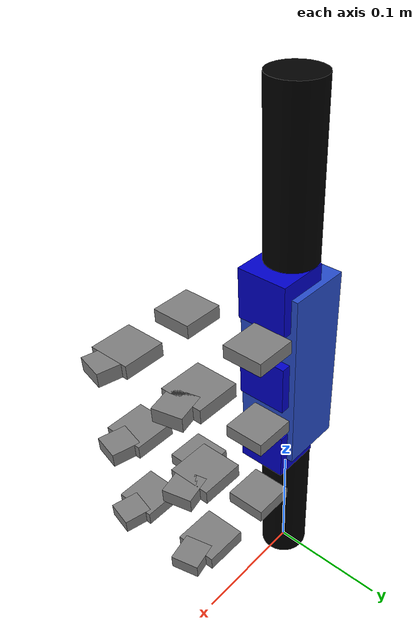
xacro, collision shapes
<?xml version="1.0" encoding="UTF-8"?>
<robot name="ezgripper_triple_mount_instantiation" xmlns:xacro="http://ros.org/wiki/xacro">
    <!-- Arm name parameter for consistent naming across all components -->
    <xacro:arg name="prefix" default="left_arm"/>
    <!-- Define the prefix property to ensure it's accessible in all included files -->
    <xacro:property name="prefix" value="$(arg prefix)"/>
    <!-- Triple gripper uses fixed unit numbers: 1 for left, 2 for center, 3 for right -->
    <!-- Triple gripper uses fixed unit numbers: 1 for left, 2 for center, 3 for right -->

    <!-- Include centralized material definitions -->
    <xacro:include filename="$(find ezgripper_description)/urdf/materials.urdf.xacro" />
    <!-- Define materials -->
    <xacro:define_ezgripper_materials />

    <xacro:property name="ezgripper_offset_x" value="0.00"/>
    <xacro:property name="ezgripper_offset_y" value="0.0"/>
    <xacro:property name="ezgripper_offset_z" value="0.21"/>

    <!-- Include the triple gripper with mount XACRO file -->
    <xacro:include filename="ezgripper_triple_with_mount.urdf.xacro" />

    <!-- Instantiate the gripper and mount assembly with specified parameters -->
    <!-- The triple gripper uses the arm name as prefix and fixed unit numbers (1,2,3) for each gripper position -->
    <xacro:ezgripper_triple_with_mount
        prefix="$(arg prefix)"
        parent_link="base_link">
        <origin xyz="${ezgripper_offset_x} ${ezgripper_offset_y} ${ezgripper_offset_z}" rpy="0 0 0"/>
    </xacro:ezgripper_triple_with_mount>

    <link name="world"/>

    <joint name="fixed" type="fixed">
        <parent link="world"/>
        <child link="base_link"/>
    </joint>

    <link name="base_link">
        <visual>
            <geometry>
                <cylinder length="0.42" radius="0.02"/>
            </geometry>
            <origin rpy="0 0 0" xyz="0 0 0.21"/>
            <material name="ezgripper_black"/>
        </visual>
        <collision>
            <geometry>
                <cylinder length="0.42" radius="0.02"/>
            </geometry>
            <origin rpy="0 0 0" xyz="0 0 0.21"/>
        </collision>
    </link>

</robot>

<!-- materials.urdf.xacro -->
<robot xmlns:xacro="http://ros.org/wiki/xacro">
  <!-- EZGripper material color properties -->
  <xacro:property name="ezgripper_black_rgba" value="0.0 0.0 0.0 1.0" />
  <xacro:property name="ezgripper_blue_rgba" value="0.0 0.0 0.8 1.0" />
  <xacro:property name="ezgripper_grey_rgba" value="0.5 0.5 0.5 1.0" />
  <xacro:property name="ezgripper_white_rgba" value="1.0 1.0 1.0 1.0" />

  <!-- EZGripper material definitions macro -->
  <xacro:macro name="define_ezgripper_materials">
    <material name="ezgripper_black">
      <color rgba="${ezgripper_black_rgba}"/>
    </material>

    <material name="ezgripper_blue">
      <color rgba="${ezgripper_blue_rgba}"/>
    </material>

    <material name="ezgripper_grey">
      <color rgba="${ezgripper_grey_rgba}"/>
    </material>

    <material name="ezgripper_white">
      <color rgba="${ezgripper_white_rgba}"/>
    </material>
  </xacro:macro>

</robot>

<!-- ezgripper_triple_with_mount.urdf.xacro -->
<robot name="ezgripper_triple_with_mount" xmlns:xacro="http://ros.org/wiki/xacro">

  <xacro:macro name="ezgripper_triple_with_mount" params="prefix parent_link *origin">
    <!-- Use the robot prefix for consistent naming across all components -->

    <!-- Define gripper spacing properties -->
    <xacro:property name="gripper_spacing" value="0.068"/>  <!-- Gripper separation in m (6.8cm) -->
    <xacro:property name="gripper_offset" value="0.01254"/>   <!-- Gripper offset in the positive X direction from the mount in m (1.254cm) -->

    <!-- Include the gripper and mount files -->
    <xacro:include filename="$(find ezgripper_description)/urdf/SAKE_triple_mount.urdf.xacro" />
    <xacro:include filename="$(find ezgripper_description)/urdf/ezgripper_single.urdf.xacro" />

    <!-- Instantiate the triple mount as a common component for all grippers -->
    <xacro:SAKE_triple_mount prefix="${prefix}" parent_link="${parent_link}">
      <xacro:insert_block name="origin"/>
    </xacro:SAKE_triple_mount>

    <!-- Instantiate the first ezgripper (left position) with unique prefix -->
    <!-- Each gripper in the triple assembly has a unique prefix to ensure proper naming -->
    <xacro:ezgripper_single prefix="${prefix}_1" parent_link="${prefix}_ezgripper_to_mount">
      <origin xyz="${gripper_offset} 0 ${gripper_spacing}" rpy="0 0 0"/>
    </xacro:ezgripper_single>

    <!-- Instantiate the second ezgripper (center position) with unique prefix -->
    <xacro:ezgripper_single prefix="${prefix}_2" parent_link="${prefix}_ezgripper_to_mount">
      <origin xyz="${gripper_offset} 0 0" rpy="0 0 0"/>
    </xacro:ezgripper_single>

    <!-- Instantiate the third ezgripper (right position) with unique prefix -->
    <xacro:ezgripper_single prefix="${prefix}_3" parent_link="${prefix}_ezgripper_to_mount">
      <origin xyz="${gripper_offset} 0 -${gripper_spacing}" rpy="0 0 0"/>
    </xacro:ezgripper_single>

  </xacro:macro>

</robot>

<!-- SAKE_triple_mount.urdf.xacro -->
<robot name="SAKE_triple_mount" xmlns:xacro="http://ros.org/wiki/xacro">

	<xacro:macro name="SAKE_triple_mount" params="prefix parent_link *origin">

		<!-- links -->

		<joint name="${prefix}_ezgripper_mount2base" type="fixed">
				<xacro:insert_block name="origin"/>
				<parent link="${parent_link}"/>
				<child link="${prefix}_ezgripper_to_mount"/>
				<axis xyz="0 0 0"/>
				<limit effort="0" lower="-1.57075" upper="0.25" velocity="3.67"/>
		</joint>

		<link name="${prefix}_ezgripper_to_mount">
			<visual>
				<origin rpy="0 0 0" xyz="0.0 0.0 0.0"/>
				<geometry>
					<mesh filename="package://ezgripper_description/meshes/visual/SAKE_Triple_Mount.stl"/>
				</geometry>
				<material name="blue"/>
				<!-- Using material defined in materials.urdf.xacro -->
			</visual>
			<collision>
				<origin rpy="0 0 0" xyz="0.0 0.0 0.0"/>
				<geometry>
					<box size="0.05 0.05 0.15"/>
				</geometry>
			</collision>
			<inertial>
				<mass value=".3"/>
				<inertia ixx="0.01" ixy="0.0" ixz="0.0" iyy="0.01" iyz="0.0" izz="0.01"/>
			</inertial>
		</link>

		<gazebo reference="${prefix}_ezgripper_to_mount">
			<material>Gazebo/Blue</material>
		</gazebo>

	</xacro:macro>

</robot>

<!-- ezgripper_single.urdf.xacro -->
<robot name="ezgripper_single" xmlns:xacro="http://ros.org/wiki/xacro">

    <!-- Material definitions are included in the parent file -->

	<xacro:macro name="ezgripper_single" params="prefix parent_link *origin">

		<!-- links -->

		<xacro:ezgripper_palm prefix="${prefix}" parent_link="${parent_link}">
			<xacro:insert_block name="origin"/>
		</xacro:ezgripper_palm>

	</xacro:macro>

	<xacro:macro name="ezgripper_palm" params="prefix parent_link *origin">

        <joint name="${prefix}_ezgripper_to_parent" type="fixed">
   	    <xacro:insert_block name="origin"/>
            <parent link="${parent_link}"/>
            <child link="${prefix}_ezgripper_palm_link"/>
            <axis xyz="0 0 0"/>
            <limit effort="0" lower="-1.57075" upper="0.25" velocity="3.67"/>
        </joint>

		<link name="${prefix}_ezgripper_palm_link">
			<visual>
				<origin xyz="0.0 0 0" rpy="0 0 0"/>
				<geometry>
					<mesh filename="package://ezgripper_description/meshes/visual/SAKE_Palm_IM.stl"/>
				</geometry>
				<material name="ezgripper_blue"/>
			</visual>
			<collision>
				<origin xyz="0.0 0 0" rpy="0 0 0"/>
				<geometry>
					<box size="0.04 0.04 0.04"/>
				</geometry>
			</collision>
			<inertial>
				<mass value=".3"/>
				<inertia ixx="0.01" ixy="0.0" ixz="0.0" iyy="0.01" iyz="0.0" izz="0.01"/>
			</inertial>
		</link>

		<gazebo reference="${prefix}_ezgripper_palm_link">
			<material>Gazebo/Blue</material>
		</gazebo>

		<xacro:ezgripper_finger_L1 prefix="${prefix}" postfix="1" reflect="1" />
		<xacro:ezgripper_finger_L1 prefix="${prefix}" postfix="2" reflect="1" />

		<xacro:ezgripper_finger_L2 prefix="${prefix}" postfix="1" reflect="1" />
		<xacro:ezgripper_finger_L2 prefix="${prefix}" postfix="2" reflect="1" />

		<xacro:ezgripper_finger_pad prefix="${prefix}" postfix="1" reflect="1" />
		<xacro:ezgripper_finger_pad prefix="${prefix}" postfix="2" reflect="1" />

		<xacro:ezgripper_knuckle_palm_L1 prefix="${prefix}" postfix="1" reflectY="1" reflectZ="1" reflectR="-1" mimic_test="false"/>
		<xacro:ezgripper_knuckle_palm_L1 prefix="${prefix}" postfix="2" reflectY="-1" reflectZ="1" reflectR="1" mimic_test="true"/>

		<xacro:ezgripper_knuckle_L1_L2 prefix="${prefix}" postfix="1" reflectY="1" reflectZ="1" reflectR="-1"/>
		<xacro:ezgripper_knuckle_L1_L2 prefix="${prefix}" postfix="2" reflectY="-1" reflectZ="1" reflectR="1"/>

		<xacro:ezgripper_joint_finger_pad prefix="${prefix}" postfix="1" reflectY="1" reflectZ="1" reflectR="1"/>
		<xacro:ezgripper_joint_finger_pad prefix="${prefix}" postfix="2" reflectY="-1" reflectZ="1" reflectR="-1"/>

		<!-- Transmission needs to be removed when mimicked -->
		<xacro:ezgripper_knuckle_palm_trans prefix="${prefix}" postfix="L1_1"/>

		<xacro:gazebo_knuckle_jsp prefix="${prefix}" />

	</xacro:macro>

	<xacro:macro name="ezgripper_finger_L1" params="prefix postfix reflect">

		<link name="${prefix}_ezgripper_finger_L1_${postfix}">
			<visual>
				<origin xyz="0 0 0" rpy="0 0 0"/>
				<geometry>
					<mesh filename="package://ezgripper_description/meshes/visual/SAKE_Finger_L1_IM.stl"/>
				</geometry>
				<material name="ezgripper_grey"/>
			</visual>
			<collision>
				<origin xyz="0 0 0" rpy="0 0 0"/>
				<geometry>
					<box size="0.03 0.01 0.03"/>
				</geometry>
			</collision>
			<inertial>
				<mass value=".025"/>
				<inertia ixx="0.01" ixy="0.0" ixz="0.0" iyy="0.01" iyz="0.0" izz="0.01"/>
			</inertial>
		</link>

		<gazebo reference="${prefix}_ezgripper_finger_L1_${postfix}">
			<material>Gazebo/Grey</material>
		</gazebo>

	</xacro:macro>

	<xacro:macro name="ezgripper_finger_L2" params="prefix postfix reflect">

		<link name="${prefix}_ezgripper_finger_L2_${postfix}">
			<visual>
				<origin xyz="0 0 0" rpy="0 0 0"/>
				<geometry>
					<mesh filename="package://ezgripper_description/meshes/visual/SAKE_Finger_L2_IM.stl"/>
				</geometry>
				<material name="ezgripper_grey"/>
			</visual>
			<collision>
				<origin xyz="0 0 0" rpy="0 0 0"/>
				<geometry>
					<box size="0.03 0.01 0.03"/>
				</geometry>
			</collision>
			<inertial>
				<mass value=".025"/>
				<inertia ixx="0.01" ixy="0.0" ixz="0.0" iyy="0.01" iyz="0.0" izz="0.01"/>
			</inertial>
		</link>

		<gazebo reference="${prefix}_ezgripper_finger_L2_${postfix}">
			<material>Gazebo/Grey</material>
		</gazebo>

	</xacro:macro>

	<xacro:macro name="ezgripper_finger_pad" params="prefix postfix reflect">

		<link name="${prefix}_ezgripper_finger_pad_${postfix}">
			<visual>
				<origin xyz="0 0 0" rpy="0 0 0"/>
				<geometry>
					<mesh filename="package://ezgripper_description/meshes/visual/SAKE_Finger_Pad_IM.stl"/>
				</geometry>
				<material name="ezgripper_grey"/>
			</visual>
			<collision>
				<origin xyz="0 0 0" rpy="0 0 0"/>
				<geometry>
					<box size="0.02 0.01 0.02"/>
				</geometry>
			</collision>
			<inertial>
				<mass value=".025"/>
				<inertia ixx="0.01" ixy="0.0" ixz="0.0" iyy="0.01" iyz="0.0" izz="0.01"/>
			</inertial>
		</link>

		<gazebo reference="${prefix}_ezgripper_finger_pad_${postfix}">
			<material>Gazebo/Grey</material>
		</gazebo>

	</xacro:macro>

	<!-- Joints -->

	<xacro:macro name="ezgripper_knuckle_palm_L1" params="prefix postfix reflectY reflectZ reflectR mimic_test">
		<joint name="${prefix}_ezgripper_knuckle_palm_L1_${postfix}" type="revolute">
			<parent link="${prefix}_ezgripper_palm_link"/>
			<child link="${prefix}_ezgripper_finger_L1_${postfix}"/>
			<origin xyz="0.0595 ${reflectY*0.03} 0" rpy="${1.5708 * reflectR} 0 0"/>
			<axis xyz="0 1 0"/>
			<limit lower="-1.57075" upper="0.27" effort="1" velocity="3.67"/>
			<xacro:if value="${mimic_test}">
					<mimic joint="${prefix}_ezgripper_knuckle_palm_L1_1"/>
			</xacro:if>
		</joint>
	</xacro:macro>

	<xacro:macro name="ezgripper_knuckle_L1_L2" params="prefix postfix reflectY reflectZ reflectR">
		<joint name="${prefix}_ezgripper_knuckle_L1_L2_${postfix}" type="fixed">
			<parent link="${prefix}_ezgripper_finger_L1_${postfix}"/>
			<child link="${prefix}_ezgripper_finger_L2_${postfix}"/>
			<origin xyz="0.052 0 0" rpy="0 0 0"/>
			<axis xyz="0 1 0"/>
		</joint>
	</xacro:macro>

	<xacro:macro name="ezgripper_joint_finger_pad" params="prefix postfix reflectY reflectZ reflectR">
		<joint name="${prefix}_ezgripper_joint_finger_pad${postfix}" type="fixed">
			<parent link="${prefix}_ezgripper_finger_L2_${postfix}"/>
			<child link="${prefix}_ezgripper_finger_pad_${postfix}"/>
			<origin xyz="0.01849 0 0" rpy="0 -0.2318 0"/>
			<axis xyz="0 1 0"/>
		</joint>
	</xacro:macro>

	<!-- Transmissions for Gazebo -->

	<xacro:macro name="ezgripper_knuckle_palm_trans" params="prefix postfix">
		<transmission name="${prefix}_ezgripper_knuckle_palm_trans_${postfix}">
				<type>transmission_interface/SimpleTransmission</type>
				<joint name="${prefix}_ezgripper_knuckle_palm_${postfix}">
					<hardwareInterface>hardware_interface/PositionJointInterface</hardwareInterface>
				</joint>
				<actuator name="${prefix}_ezgripper_knuckle_palm_motor${postfix}">
					<mechanicalReduction>1</mechanicalReduction>
					<hardwareInterface>hardware_interface/PositionJointInterface</hardwareInterface>
				</actuator>
		</transmission>
	</xacro:macro>

	<xacro:macro name="gazebo_knuckle_jsp" params="prefix">
		<gazebo>
			<plugin name="joint_state_publisher" filename="libgazebo_ros_joint_state_publisher.so">
				<joint_name>${prefix}_ezgripper_knuckle_palm_L1_1</joint_name>
				<update_rate>100.0</update_rate>
			</plugin>
		</gazebo>
	</xacro:macro>

  <ros2_control name="GazeboSystem" type="system">

    <hardware>
      <plugin>gazebo_ros2_control/GazeboSystem</plugin>
    </hardware>

		<joint name="${prefix}_ezgripper_knuckle_palm_L1_1">

      <command_interface name="position"/>

      <state_interface name="position"/>
      <state_interface name="velocity"/>
      <state_interface name="effort"/>
    </joint>

    <joint name="${prefix}_ezgripper_knuckle_palm_L1_2">

			<param name="mimic">${prefix}_ezgripper_knuckle_palm_L1_1</param>
			<param name="multiplier">1</param>

			<command_interface name="position"/>

			<state_interface name="position"/>
      <state_interface name="velocity"/>
      <state_interface name="effort"/>
    </joint>

  </ros2_control>

	<gazebo>

		<plugin name="gazebo_ros2_control" filename="libgazebo_ros2_control.so">

			<ros>
				<namespace>/ezgripper_single</namespace>
			</ros>

			<robot_param>robot_description</robot_param>
      <robot_param_node>/robot_state_publisher</robot_param_node>
			<robot_sim_type>gazebo_ros2_control/GazeboSystem</robot_sim_type>
			<parameters>$(find ezgripper_control)/config/controllers_single.yaml</parameters>
		</plugin>

	</gazebo>

</robot>
